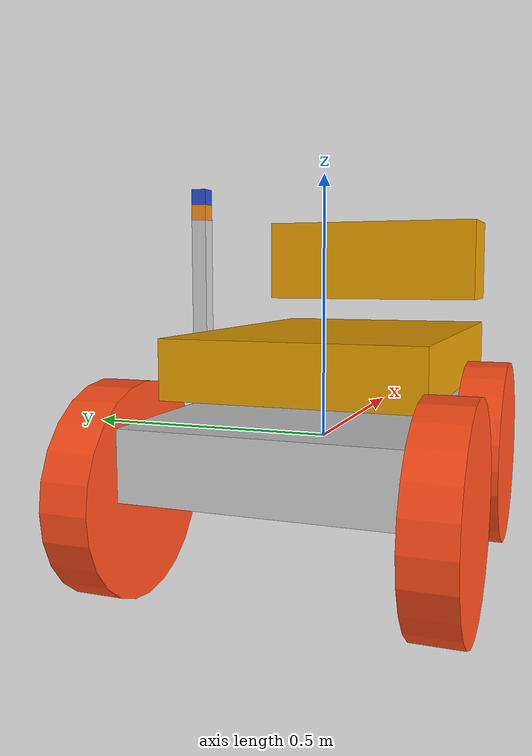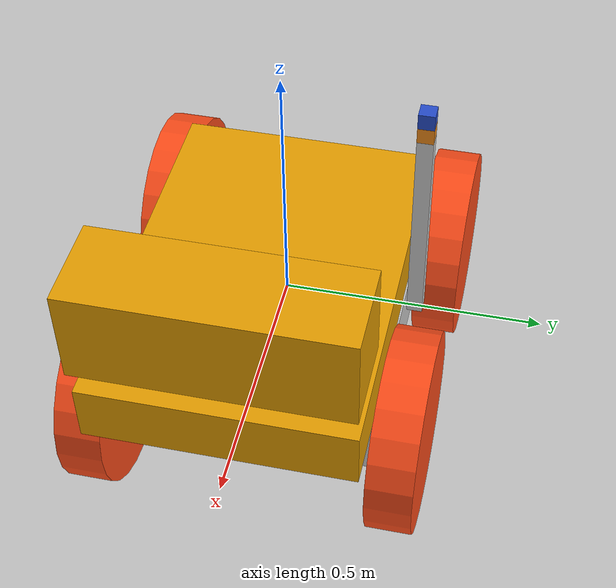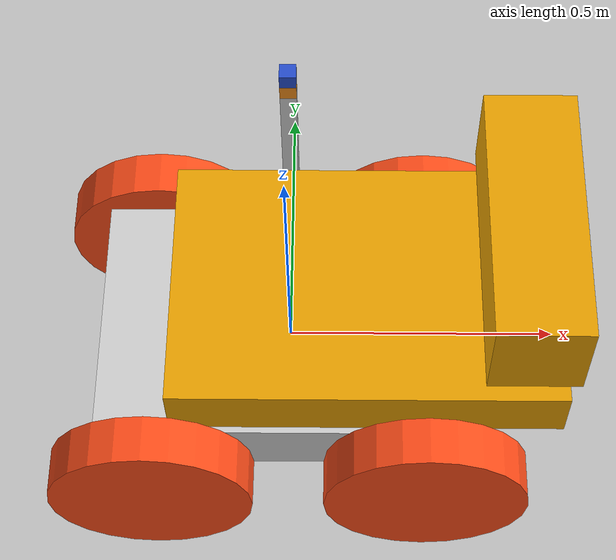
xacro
<?xml version="1.0" encoding="UTF-8"?>
<robot xmlns:xacro="http://www.ros.org/wiki/xacro"  name="robot">

    <material name="orange">
        <color rgba="1 0.3 0.1 1"/>
    </material>

    <material name="grey">
        <color rgba="0.8 0.8 0.8 1"/>
    </material>

    <material name="blue">
        <color rgba="0.3 1.0 0.3 1"/>
    </material>

    <xacro:include filename="robot_properties.xacro" />
    <xacro:include filename="robot_wheel.xacro" />
    <xacro:include filename="robot_inertia.xacro" />

    <link name="base_link">
        <!-- Base -->
        <visual>
            <origin xyz="0 0 0" rpy="0 0 0"/>
            <geometry>
                <box size="${base_length} ${base_width} ${base_height}"/>
            </geometry>
            <material name="grey" />
        </visual>
        <!-- Conveyor belt -->
        <visual>
            <origin xyz="${base_length*0.2} 0 ${base_height*1.15}" />
            <geometry>
                <box size="${base_length} ${base_width} ${base_height*0.9}" />
            </geometry>
        </visual>
        <!-- Ebox -->
        <visual>
            <origin xyz="${base_length*0.6} 0 ${base_height*2.05 + 0.09}" />
            <geometry>
                <box size="0.165 ${base_width} 0.178" />
            </geometry>
        </visual>

        <collision>
            <geometry>
                <box size="${base_length} ${base_width} ${base_height}"/>
            </geometry>
        </collision>
        <xacro:inertial_box mass="${base_mass}" x="${base_length}" y="${base_width}" z="${base_height}"/>
    </link>

    <xacro:include filename="robot_actuator.xacro"   />
    <!-- xacro:include filename="robot_imu.xacro"       / -->
    <xacro:include filename="robot_depth.xacro"     />
    <xacro:include filename="robot_gazebo.xacro" />

    <xacro:wheel name="fr" x="${base_length / 2 - 0.1}" y="${base_width / 2}" wheel_offset="${wheel_thickness / 2}"/>
    <xacro:wheel name="fl" x="${base_length / 2 - 0.1}" y="${-base_width / 2}" wheel_offset="${-wheel_thickness / 2}"/>
    <xacro:wheel name="br" x="${-base_length / 2 + 0.1}" y="${base_width / 2}" wheel_offset="${wheel_thickness / 2}"/>
    <xacro:wheel name="bl" x="${-base_length / 2 + 0.1}" y="${-base_width / 2}" wheel_offset="${-wheel_thickness / 2}"/>

</robot>

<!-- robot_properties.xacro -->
<robot xmlns:xacro="http://www.ros.org/wiki/xacro">

    <xacro:property name="wheel_radius"    value="0.19"/>
    <xacro:property name="wheel_thickness" value="0.086"/>
    <xacro:property name="wheel_height"    value="0.062"/>
    <xacro:property name="wheel_mass"      value="100.83"/>
    <xacro:property name="base_width"      value="0.483"/>
    <xacro:property name="base_length"     value="0.711"/>
    <xacro:property name="base_height"     value="0.124"/>
    <xacro:property name="base_mass"       value="56.7"/>
    <xacro:property name="actuator_dx"     value="0.314"/>
    <xacro:property name="actuator_height" value="0.419"/>
    <xacro:property name="actuator_size"   value="0.03"/>
    <xacro:property name="imu_x"           value="0.0"/>
    <xacro:property name="imu_y"           value="0.0"/>
    <xacro:property name="imu_z"           value="0.0"/>

</robot>

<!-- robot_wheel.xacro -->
<robot xmlns:xacro="http://www.ros.org/wiki/xacro">

    <xacro:include filename="robot_properties.xacro" />
    <xacro:include filename="robot_inertia.xacro" />

    <xacro:macro name="wheel" params="name x y wheel_offset">

        <joint name="wheel_${name}_joint" type="continuous">
            <parent link="base_link" />
            <child link="wheel_${name}_link" />
            <origin rpy="0 0 0" xyz="${x} ${y} ${-wheel_height}" />
            <axis rpy="0 0 0" xyz="0 1 0"/>
            <limit effort="100" velocity="100" />
        </joint>

        <link name="wheel_${name}_link">
            <visual>
                <origin xyz="0 ${wheel_offset} 0" rpy="0 1.57 1.57"/>
                <geometry>
                    <cylinder length="${wheel_thickness}" radius="${wheel_radius}"/>
                </geometry>
                <material name="orange" />
            </visual>
            <collision>
                <origin xyz="0 ${wheel_offset} 0" rpy="0 1.57 1.57"/>
                <geometry>
                    <cylinder length="${wheel_thickness}" radius="${wheel_radius}"/>
                </geometry>
            </collision>
            <xacro:inertial_cylinder mass="${wheel_mass}" length="${wheel_thickness}" radius="${wheel_radius}" >
                <origin xyz="0 ${wheel_offset} 0" rpy="0 0 0"/>
            </xacro:inertial_cylinder>
        </link>
    </xacro:macro>

</robot>

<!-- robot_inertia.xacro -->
<robot xmlns:xacro="http://www.ros.org/wiki/xacro">
    <xacro:macro name="inertial_box" params="mass x y z ">
        <inertial>
            <origin xyz="0 0 0" rpy="0 0 0" />
            <mass value="${mass}" />
            <inertia ixx="${(1/12) * mass * (y*y+z*z)}" ixy="0.0" ixz="0.0"
                    iyy="${(1/12) * mass * (x*x+z*z)}" iyz="0.0"
                    izz="${(1/12) * mass * (x*x+y*y)}" />
        </inertial>
    </xacro:macro>

    <xacro:macro name="inertial_cylinder" params="mass length radius *origin">
        <inertial>
            <xacro:insert_block name="origin"/>
            <mass value="${mass}" />
            <inertia ixx="${(1/12) * mass * (3*radius*radius + length*length)}" ixy="0.0" ixz="0.0"
                    iyy="${(1/12) * mass * (3*radius*radius + length*length)}" iyz="0.0"
                    izz="${(1/2) * mass * (radius*radius)}" />
        </inertial>
    </xacro:macro>
</robot>

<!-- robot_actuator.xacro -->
<robot xmlns:xacro="http://www.ros.org/wiki/xacro">

    <!--
    Linear actuator and camera head
    - Origin of linear actuator is at the point it extends
    -->
    <link name="actuator_base_link">
        <origin xyz="0 0 0" />
        <visual>
            <origin xyz="0 0 -${actuator_height / 2}" />
            <geometry>
                <box size="${actuator_size} ${actuator_size} ${actuator_height}"/>
            </geometry>
            <material name="grey" />
        </visual>
        <collision>
            <origin xyz="0 0 -${actuator_height / 2}" />
            <geometry>
                <box size="${actuator_size} ${actuator_size} ${actuator_height}"/>
            </geometry>
        </collision>
        <xacro:inertial_box mass="6.0" x="${actuator_size}" y="${actuator_size}" z="${actuator_height}"/>
    </link>

    <joint name="actuator_base_joint" type="fixed" >
        <parent link="base_link" />
        <child link="actuator_base_link" />
        <origin xyz="0 ${(base_width + actuator_size) / 2} ${actuator_height}" rpy="0 0 0" />
    </joint>

    <link name="actuator_link">
        <origin xyz="0 0 0"/>
        <visual>
            <origin xyz="0 0 -${actuator_height / 2}" />
            <geometry>
                <box size="${actuator_size / 2} ${actuator_size / 2} ${actuator_height}"/>
            </geometry>
            <material name="blue" />
        </visual>
    </link>

    <joint name="actuator_joint" type="prismatic" >
        <parent link="actuator_base_link" />
        <child link="actuator_link" />
        <origin xyz="0 0 0" rpy="0 0 0" />
        <axis xyz = "0 0 1"/>
        <limit effort="1000.0" lower="0" upper="100.0" velocity="0" />
    </joint>

    <link name="servo_link">
        <origin xyz="0 0 0" rpy="0 0 0"/>
        <visual>
            <origin xyz="0 0 0.015" rpy="0 0 0"/>
            <geometry>
                <!-- cylinder length="0.1" radius="0.1" / -->
                <box size="0.03 0.03 0.03"/>
            </geometry>
        </visual>
        <collision>
            <origin xyz="0 0.015 0" rpy="0 0 0"/>
            <geometry>
                <!-- cylinder length="0.1" radius="0.1" / -->
                <box size="0.03 0.03 0.03"/>
            </geometry>
        </collision>
        <xacro:inertial_cylinder mass="1.0" length="0.03" radius="0.015" >
            <origin xyz="0 0 0.015" rpy="0 0 0"/>
        </xacro:inertial_cylinder>
    </link>

    <joint name="servo_joint" type="continuous">
        <parent link="actuator_link" />
        <child link="servo_link" />
        <origin xyz="0 0 0" rpy="0 0 0" />
        <axis rpy="0 0 0" xyz="0 0 1"/>
        <limit effort="100" velocity="100" />
    </joint>

    <link name="rgb_link">
        <origin xyz="0 0 0.015" rpy="0 0 0"/>
        <visual>
            <geometry>
                <box size="0.03 0.03 0.03"/>
            </geometry>
        </visual>
        <material name="blue" />
    </link>

    <joint name="rgb_joint" type="fixed">
        <parent link="servo_link" />
        <child link="rgb_link" />
        <origin xyz="0 0 0.045" rpy="0 0 0"/>
    </joint>

    <!-- This is for transformations between image frame and world frame -->
    <link name="rgb_link_optical"></link>

    <joint name="rgb_optical_joint" type="fixed">
        <parent link="rgb_link" />
        <child link="rgb_link_optical" />
        <origin xyz="0 0 0" rpy="${-pi/2} 0 ${-pi/2}"/>
    </joint>

    <gazebo reference="rgb_link">
        <material>Gazebo/Blue</material>

        <sensor name="rgb" type="camera">
            <pose> 0 0 0 0 0 0 </pose>
            <visualize>true</visualize>
            <update_rate>10</update_rate>
            <camera>
                <horizontal_fov>1.57079632679</horizontal_fov>
                <image>
                    <format>R8G8B8</format>
                    <width>640</width>
                    <height>480</height>
                </image>
                <clip>
                    <near>0.01</near>
                    <far>11.0</far>
                </clip>
            </camera>
            <plugin name="rgb_controller" filename="libgazebo_ros_camera.so">
                <frame_name>rgb_link_optical</frame_name>
                <ros>
                    <namespace>camera</namespace>
                </ros>
            </plugin>
        </sensor>
    </gazebo>

</robot>

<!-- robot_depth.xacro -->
<robot xmlns:xacro="http://www.ros.org/wiki/xacro">

    <link name="depth_link">
        <origin xyz="0 0 0" rpy="0 0 0"/>
        <visual>
            <geometry>
                <box size="0.03 0.03 0.03"/>
            </geometry>
        </visual>
        <material name="blue" />
    </link>

    <joint name="depth_joint" type="fixed">
        <parent link="base_link" />
        <child link="depth_link" />
        <origin xyz="${base_length /2 + 0.015} 0 -0.015" rpy="0 0 0"/>
    </joint>

    <!-- This is for transformations between image frame and world frame -->
    <link name="depth_link_optical"></link>
    <link name="cam_link_optical"></link>

    <joint name="cam_depth_joint" type="fixed">
        <parent link="depth_link_optical" />
        <child link="cam_link_optical" />
        <origin xyz="0 0 0" rpy="0 0 0"/>
    </joint>

    <joint name="depth_optical_joint" type="fixed">
        <parent link="depth_link" />
        <child link="depth_link_optical" />
        <origin xyz="0 0 0" rpy="${-pi / 2} 0 ${-pi / 2}"/>
    </joint>

    <gazebo reference="depth_link">
        <material>Gazebo/Blue</material>

        <sensor name="depth" type="depth">
            <frame_name>depth_link_optical</frame_name>
            <pose> 0 0 0 0 0 0 </pose>
            <visualize>true</visualize>
            <update_rate>40</update_rate>
            <camera>
                <horizontal_fov>1.57079632679</horizontal_fov>
                <image>
                    <format>B8G8R8</format>
                    <width>640</width>
                    <height>480</height>
                </image>
                <clip>
                    <near>0.05</near>
                    <far>25.0</far>
                </clip>
            </camera>
            <plugin name="depth_controller" filename="libgazebo_ros_camera.so">
                <frame_name>depth_link_optical</frame_name>
                <min_depth>0.05</min_depth>
                <max_depth>3.5</max_depth>
                <ros>
                    <namespace>camera</namespace>
                </ros>
            </plugin>
        </sensor>
    </gazebo>

</robot>
